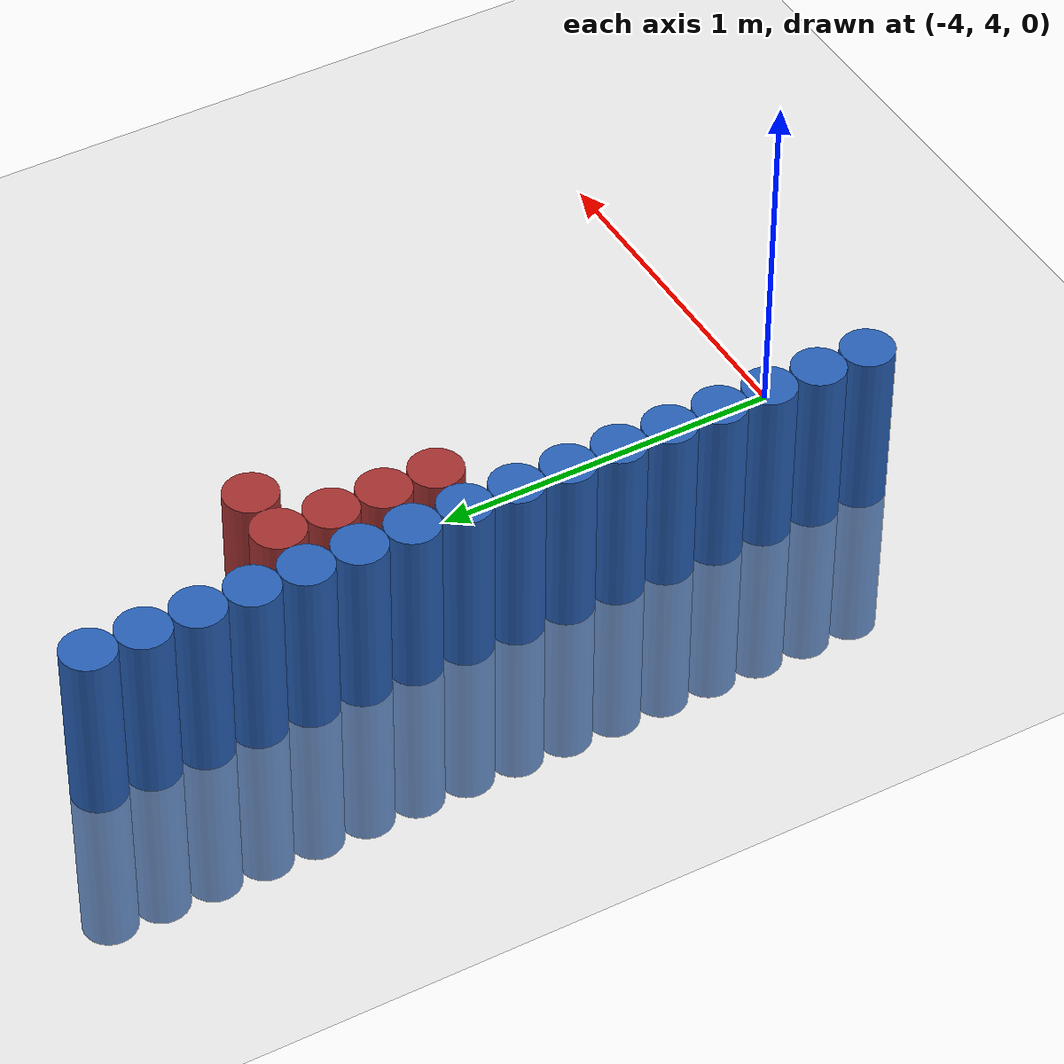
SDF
<sdf version="1.6">
 <world name="default">
  <model name="ground_plane">
   <static>1</static>
   <link name="link">
    <collision name="collision">
     <geometry><plane><normal>0 0 1</normal><size>100 100</size></plane></geometry>
     <surface><friction><ode><mu>100</mu><mu2>50</mu2></ode></friction></surface>
    </collision>
    <visual name="visual">
     <cast_shadows>0</cast_shadows>
     <geometry><plane><normal>0 0 1</normal><size>100 100</size></plane></geometry>
     <material>
      <script><uri>file://media/materials/scripts/gazebo.material</uri><name>Gazebo/Grey</name></script>
     </material>
    </visual>
   </link>
  </model>
  <model name="unit_cylinder_81">
   <static>1</static>
   <pose>-4.425000 3.975000 0.000000 0.000000 0.000000 0.000000</pose>
   <link name="link">
    <inertial>
     <mass>1</mass>
     <inertia><ixx>0.145833</ixx><ixy>0</ixy><ixz>0</ixz><iyy>0.145833</iyy><iyz>0</iyz><izz>0.125</izz></inertia>
    </inertial>
    <collision name="collision">
     <geometry><cylinder><radius>0.075000</radius><length>1</length></cylinder></geometry>
    </collision>
    <visual name="visual">
     <geometry><cylinder><radius>0.075000</radius><length>1</length></cylinder></geometry>
     <material>
      <ambient>0.152000 0.379000 0.720000 1</ambient>
      <diffuse>0.152000 0.379000 0.720000 1</diffuse>
     </material>
     <material>
      <script><name>Gazebo/Grey</name><uri>file://media/materials/scripts/gazebo.material</uri></script>
     </material>
    </visual>
    <sensor name="sensor_contact" type="contact"><contact><collision>collision</collision></contact></sensor>
   </link>
   <plugin filename="gz-sim-touchplugin-system" name="gz::sim::systems::TouchPlugin">
    <target>robot</target>
    <namespace>robot</namespace>
    <time>0.001</time>
    <enabled>true</enabled>
   </plugin>
  </model>
  <model name="unit_cylinder_83">
   <static>1</static>
   <pose>-4.425000 4.125000 0.000000 0.000000 0.000000 0.000000</pose>
   <link name="link">
    <inertial>
     <mass>1</mass>
     <inertia><ixx>0.145833</ixx><ixy>0</ixy><ixz>0</ixz><iyy>0.145833</iyy><iyz>0</iyz><izz>0.125</izz></inertia>
    </inertial>
    <collision name="collision">
     <geometry><cylinder><radius>0.075000</radius><length>1</length></cylinder></geometry>
    </collision>
    <visual name="visual">
     <geometry><cylinder><radius>0.075000</radius><length>1</length></cylinder></geometry>
     <material>
      <ambient>0.152000 0.379000 0.720000 1</ambient>
      <diffuse>0.152000 0.379000 0.720000 1</diffuse>
     </material>
     <material>
      <script><name>Gazebo/Grey</name><uri>file://media/materials/scripts/gazebo.material</uri></script>
     </material>
    </visual>
    <sensor name="sensor_contact" type="contact"><contact><collision>collision</collision></contact></sensor>
   </link>
   <plugin filename="gz-sim-touchplugin-system" name="gz::sim::systems::TouchPlugin">
    <target>robot</target>
    <namespace>robot</namespace>
    <time>0.001</time>
    <enabled>true</enabled>
   </plugin>
  </model>
  <model name="unit_cylinder_85">
   <static>1</static>
   <pose>-4.425000 4.275000 0.000000 0.000000 0.000000 0.000000</pose>
   <link name="link">
    <inertial>
     <mass>1</mass>
     <inertia><ixx>0.145833</ixx><ixy>0</ixy><ixz>0</ixz><iyy>0.145833</iyy><iyz>0</iyz><izz>0.125</izz></inertia>
    </inertial>
    <collision name="collision">
     <geometry><cylinder><radius>0.075000</radius><length>1</length></cylinder></geometry>
    </collision>
    <visual name="visual">
     <geometry><cylinder><radius>0.075000</radius><length>1</length></cylinder></geometry>
     <material>
      <ambient>0.152000 0.379000 0.720000 1</ambient>
      <diffuse>0.152000 0.379000 0.720000 1</diffuse>
     </material>
     <material>
      <script><name>Gazebo/Grey</name><uri>file://media/materials/scripts/gazebo.material</uri></script>
     </material>
    </visual>
    <sensor name="sensor_contact" type="contact"><contact><collision>collision</collision></contact></sensor>
   </link>
   <plugin filename="gz-sim-touchplugin-system" name="gz::sim::systems::TouchPlugin">
    <target>robot</target>
    <namespace>robot</namespace>
    <time>0.001</time>
    <enabled>true</enabled>
   </plugin>
  </model>
  <model name="unit_cylinder_87">
   <static>1</static>
   <pose>-4.425000 4.425000 0.000000 0.000000 0.000000 0.000000</pose>
   <link name="link">
    <inertial>
     <mass>1</mass>
     <inertia><ixx>0.145833</ixx><ixy>0</ixy><ixz>0</ixz><iyy>0.145833</iyy><iyz>0</iyz><izz>0.125</izz></inertia>
    </inertial>
    <collision name="collision">
     <geometry><cylinder><radius>0.075000</radius><length>1</length></cylinder></geometry>
    </collision>
    <visual name="visual">
     <geometry><cylinder><radius>0.075000</radius><length>1</length></cylinder></geometry>
     <material>
      <ambient>0.152000 0.379000 0.720000 1</ambient>
      <diffuse>0.152000 0.379000 0.720000 1</diffuse>
     </material>
     <material>
      <script><name>Gazebo/Grey</name><uri>file://media/materials/scripts/gazebo.material</uri></script>
     </material>
    </visual>
    <sensor name="sensor_contact" type="contact"><contact><collision>collision</collision></contact></sensor>
   </link>
   <plugin filename="gz-sim-touchplugin-system" name="gz::sim::systems::TouchPlugin">
    <target>robot</target>
    <namespace>robot</namespace>
    <time>0.001</time>
    <enabled>true</enabled>
   </plugin>
  </model>
  <model name="unit_cylinder_89">
   <static>1</static>
   <pose>-4.425000 4.575000 0.000000 0.000000 0.000000 0.000000</pose>
   <link name="link">
    <inertial>
     <mass>1</mass>
     <inertia><ixx>0.145833</ixx><ixy>0</ixy><ixz>0</ixz><iyy>0.145833</iyy><iyz>0</iyz><izz>0.125</izz></inertia>
    </inertial>
    <collision name="collision">
     <geometry><cylinder><radius>0.075000</radius><length>1</length></cylinder></geometry>
    </collision>
    <visual name="visual">
     <geometry><cylinder><radius>0.075000</radius><length>1</length></cylinder></geometry>
     <material>
      <ambient>0.152000 0.379000 0.720000 1</ambient>
      <diffuse>0.152000 0.379000 0.720000 1</diffuse>
     </material>
     <material>
      <script><name>Gazebo/Grey</name><uri>file://media/materials/scripts/gazebo.material</uri></script>
     </material>
    </visual>
    <sensor name="sensor_contact" type="contact"><contact><collision>collision</collision></contact></sensor>
   </link>
   <plugin filename="gz-sim-touchplugin-system" name="gz::sim::systems::TouchPlugin">
    <target>robot</target>
    <namespace>robot</namespace>
    <time>0.001</time>
    <enabled>true</enabled>
   </plugin>
  </model>
  <model name="unit_cylinder_91">
   <static>1</static>
   <pose>-4.425000 4.725000 0.000000 0.000000 0.000000 0.000000</pose>
   <link name="link">
    <inertial>
     <mass>1</mass>
     <inertia><ixx>0.145833</ixx><ixy>0</ixy><ixz>0</ixz><iyy>0.145833</iyy><iyz>0</iyz><izz>0.125</izz></inertia>
    </inertial>
    <collision name="collision">
     <geometry><cylinder><radius>0.075000</radius><length>1</length></cylinder></geometry>
    </collision>
    <visual name="visual">
     <geometry><cylinder><radius>0.075000</radius><length>1</length></cylinder></geometry>
     <material>
      <ambient>0.152000 0.379000 0.720000 1</ambient>
      <diffuse>0.152000 0.379000 0.720000 1</diffuse>
     </material>
     <material>
      <script><name>Gazebo/Grey</name><uri>file://media/materials/scripts/gazebo.material</uri></script>
     </material>
    </visual>
    <sensor name="sensor_contact" type="contact"><contact><collision>collision</collision></contact></sensor>
   </link>
   <plugin filename="gz-sim-touchplugin-system" name="gz::sim::systems::TouchPlugin">
    <target>robot</target>
    <namespace>robot</namespace>
    <time>0.001</time>
    <enabled>true</enabled>
   </plugin>
  </model>
  <model name="unit_cylinder_93">
   <static>1</static>
   <pose>-4.425000 4.875000 0.000000 0.000000 0.000000 0.000000</pose>
   <link name="link">
    <inertial>
     <mass>1</mass>
     <inertia><ixx>0.145833</ixx><ixy>0</ixy><ixz>0</ixz><iyy>0.145833</iyy><iyz>0</iyz><izz>0.125</izz></inertia>
    </inertial>
    <collision name="collision">
     <geometry><cylinder><radius>0.075000</radius><length>1</length></cylinder></geometry>
    </collision>
    <visual name="visual">
     <geometry><cylinder><radius>0.075000</radius><length>1</length></cylinder></geometry>
     <material>
      <ambient>0.152000 0.379000 0.720000 1</ambient>
      <diffuse>0.152000 0.379000 0.720000 1</diffuse>
     </material>
     <material>
      <script><name>Gazebo/Grey</name><uri>file://media/materials/scripts/gazebo.material</uri></script>
     </material>
    </visual>
    <sensor name="sensor_contact" type="contact"><contact><collision>collision</collision></contact></sensor>
   </link>
   <plugin filename="gz-sim-touchplugin-system" name="gz::sim::systems::TouchPlugin">
    <target>robot</target>
    <namespace>robot</namespace>
    <time>0.001</time>
    <enabled>true</enabled>
   </plugin>
  </model>
  <model name="unit_cylinder_95">
   <static>1</static>
   <pose>-4.425000 5.025000 0.000000 0.000000 0.000000 0.000000</pose>
   <link name="link">
    <inertial>
     <mass>1</mass>
     <inertia><ixx>0.145833</ixx><ixy>0</ixy><ixz>0</ixz><iyy>0.145833</iyy><iyz>0</iyz><izz>0.125</izz></inertia>
    </inertial>
    <collision name="collision">
     <geometry><cylinder><radius>0.075000</radius><length>1</length></cylinder></geometry>
    </collision>
    <visual name="visual">
     <geometry><cylinder><radius>0.075000</radius><length>1</length></cylinder></geometry>
     <material>
      <ambient>0.152000 0.379000 0.720000 1</ambient>
      <diffuse>0.152000 0.379000 0.720000 1</diffuse>
     </material>
     <material>
      <script><name>Gazebo/Grey</name><uri>file://media/materials/scripts/gazebo.material</uri></script>
     </material>
    </visual>
    <sensor name="sensor_contact" type="contact"><contact><collision>collision</collision></contact></sensor>
   </link>
   <plugin filename="gz-sim-touchplugin-system" name="gz::sim::systems::TouchPlugin">
    <target>robot</target>
    <namespace>robot</namespace>
    <time>0.001</time>
    <enabled>true</enabled>
   </plugin>
  </model>
  <model name="unit_cylinder_96">
   <static>1</static>
   <pose>-4.425000 5.175000 0.000000 0.000000 0.000000 0.000000</pose>
   <link name="link">
    <inertial>
     <mass>1</mass>
     <inertia><ixx>0.145833</ixx><ixy>0</ixy><ixz>0</ixz><iyy>0.145833</iyy><iyz>0</iyz><izz>0.125</izz></inertia>
    </inertial>
    <collision name="collision">
     <geometry><cylinder><radius>0.075000</radius><length>1</length></cylinder></geometry>
    </collision>
    <visual name="visual">
     <geometry><cylinder><radius>0.075000</radius><length>1</length></cylinder></geometry>
     <material>
      <ambient>0.152000 0.379000 0.720000 1</ambient>
      <diffuse>0.152000 0.379000 0.720000 1</diffuse>
     </material>
     <material>
      <script><name>Gazebo/Grey</name><uri>file://media/materials/scripts/gazebo.material</uri></script>
     </material>
    </visual>
    <sensor name="sensor_contact" type="contact"><contact><collision>collision</collision></contact></sensor>
   </link>
   <plugin filename="gz-sim-touchplugin-system" name="gz::sim::systems::TouchPlugin">
    <target>robot</target>
    <namespace>robot</namespace>
    <time>0.001</time>
    <enabled>true</enabled>
   </plugin>
  </model>
  <model name="unit_cylinder_97">
   <static>1</static>
   <pose>-4.425000 5.325000 0.000000 0.000000 0.000000 0.000000</pose>
   <link name="link">
    <inertial>
     <mass>1</mass>
     <inertia><ixx>0.145833</ixx><ixy>0</ixy><ixz>0</ixz><iyy>0.145833</iyy><iyz>0</iyz><izz>0.125</izz></inertia>
    </inertial>
    <collision name="collision">
     <geometry><cylinder><radius>0.075000</radius><length>1</length></cylinder></geometry>
    </collision>
    <visual name="visual">
     <geometry><cylinder><radius>0.075000</radius><length>1</length></cylinder></geometry>
     <material>
      <ambient>0.152000 0.379000 0.720000 1</ambient>
      <diffuse>0.152000 0.379000 0.720000 1</diffuse>
     </material>
     <material>
      <script><name>Gazebo/Grey</name><uri>file://media/materials/scripts/gazebo.material</uri></script>
     </material>
    </visual>
    <sensor name="sensor_contact" type="contact"><contact><collision>collision</collision></contact></sensor>
   </link>
   <plugin filename="gz-sim-touchplugin-system" name="gz::sim::systems::TouchPlugin">
    <target>robot</target>
    <namespace>robot</namespace>
    <time>0.001</time>
    <enabled>true</enabled>
   </plugin>
  </model>
  <model name="unit_cylinder_98">
   <static>1</static>
   <pose>-4.425000 5.475000 0.000000 0.000000 0.000000 0.000000</pose>
   <link name="link">
    <inertial>
     <mass>1</mass>
     <inertia><ixx>0.145833</ixx><ixy>0</ixy><ixz>0</ixz><iyy>0.145833</iyy><iyz>0</iyz><izz>0.125</izz></inertia>
    </inertial>
    <collision name="collision">
     <geometry><cylinder><radius>0.075000</radius><length>1</length></cylinder></geometry>
    </collision>
    <visual name="visual">
     <geometry><cylinder><radius>0.075000</radius><length>1</length></cylinder></geometry>
     <material>
      <ambient>0.152000 0.379000 0.720000 1</ambient>
      <diffuse>0.152000 0.379000 0.720000 1</diffuse>
     </material>
     <material>
      <script><name>Gazebo/Grey</name><uri>file://media/materials/scripts/gazebo.material</uri></script>
     </material>
    </visual>
    <sensor name="sensor_contact" type="contact"><contact><collision>collision</collision></contact></sensor>
   </link>
   <plugin filename="gz-sim-touchplugin-system" name="gz::sim::systems::TouchPlugin">
    <target>robot</target>
    <namespace>robot</namespace>
    <time>0.001</time>
    <enabled>true</enabled>
   </plugin>
  </model>
  <model name="unit_cylinder_99">
   <static>1</static>
   <pose>-4.425000 5.625000 0.000000 0.000000 0.000000 0.000000</pose>
   <link name="link">
    <inertial>
     <mass>1</mass>
     <inertia><ixx>0.145833</ixx><ixy>0</ixy><ixz>0</ixz><iyy>0.145833</iyy><iyz>0</iyz><izz>0.125</izz></inertia>
    </inertial>
    <collision name="collision">
     <geometry><cylinder><radius>0.075000</radius><length>1</length></cylinder></geometry>
    </collision>
    <visual name="visual">
     <geometry><cylinder><radius>0.075000</radius><length>1</length></cylinder></geometry>
     <material>
      <ambient>0.152000 0.379000 0.720000 1</ambient>
      <diffuse>0.152000 0.379000 0.720000 1</diffuse>
     </material>
     <material>
      <script><name>Gazebo/Grey</name><uri>file://media/materials/scripts/gazebo.material</uri></script>
     </material>
    </visual>
    <sensor name="sensor_contact" type="contact"><contact><collision>collision</collision></contact></sensor>
   </link>
   <plugin filename="gz-sim-touchplugin-system" name="gz::sim::systems::TouchPlugin">
    <target>robot</target>
    <namespace>robot</namespace>
    <time>0.001</time>
    <enabled>true</enabled>
   </plugin>
  </model>
  <model name="unit_cylinder_100">
   <static>1</static>
   <pose>-4.425000 5.775000 0.000000 0.000000 0.000000 0.000000</pose>
   <link name="link">
    <inertial>
     <mass>1</mass>
     <inertia><ixx>0.145833</ixx><ixy>0</ixy><ixz>0</ixz><iyy>0.145833</iyy><iyz>0</iyz><izz>0.125</izz></inertia>
    </inertial>
    <collision name="collision">
     <geometry><cylinder><radius>0.075000</radius><length>1</length></cylinder></geometry>
    </collision>
    <visual name="visual">
     <geometry><cylinder><radius>0.075000</radius><length>1</length></cylinder></geometry>
     <material>
      <ambient>0.152000 0.379000 0.720000 1</ambient>
      <diffuse>0.152000 0.379000 0.720000 1</diffuse>
     </material>
     <material>
      <script><name>Gazebo/Grey</name><uri>file://media/materials/scripts/gazebo.material</uri></script>
     </material>
    </visual>
    <sensor name="sensor_contact" type="contact"><contact><collision>collision</collision></contact></sensor>
   </link>
   <plugin filename="gz-sim-touchplugin-system" name="gz::sim::systems::TouchPlugin">
    <target>robot</target>
    <namespace>robot</namespace>
    <time>0.001</time>
    <enabled>true</enabled>
   </plugin>
  </model>
  <model name="unit_cylinder_101">
   <static>1</static>
   <pose>-4.425000 5.925000 0.000000 0.000000 0.000000 0.000000</pose>
   <link name="link">
    <inertial>
     <mass>1</mass>
     <inertia><ixx>0.145833</ixx><ixy>0</ixy><ixz>0</ixz><iyy>0.145833</iyy><iyz>0</iyz><izz>0.125</izz></inertia>
    </inertial>
    <collision name="collision">
     <geometry><cylinder><radius>0.075000</radius><length>1</length></cylinder></geometry>
    </collision>
    <visual name="visual">
     <geometry><cylinder><radius>0.075000</radius><length>1</length></cylinder></geometry>
     <material>
      <ambient>0.152000 0.379000 0.720000 1</ambient>
      <diffuse>0.152000 0.379000 0.720000 1</diffuse>
     </material>
     <material>
      <script><name>Gazebo/Grey</name><uri>file://media/materials/scripts/gazebo.material</uri></script>
     </material>
    </visual>
    <sensor name="sensor_contact" type="contact"><contact><collision>collision</collision></contact></sensor>
   </link>
   <plugin filename="gz-sim-touchplugin-system" name="gz::sim::systems::TouchPlugin">
    <target>robot</target>
    <namespace>robot</namespace>
    <time>0.001</time>
    <enabled>true</enabled>
   </plugin>
  </model>
  <model name="unit_cylinder_102">
   <static>1</static>
   <pose>-4.425000 6.075000 0.000000 0.000000 0.000000 0.000000</pose>
   <link name="link">
    <inertial>
     <mass>1</mass>
     <inertia><ixx>0.145833</ixx><ixy>0</ixy><ixz>0</ixz><iyy>0.145833</iyy><iyz>0</iyz><izz>0.125</izz></inertia>
    </inertial>
    <collision name="collision">
     <geometry><cylinder><radius>0.075000</radius><length>1</length></cylinder></geometry>
    </collision>
    <visual name="visual">
     <geometry><cylinder><radius>0.075000</radius><length>1</length></cylinder></geometry>
     <material>
      <ambient>0.152000 0.379000 0.720000 1</ambient>
      <diffuse>0.152000 0.379000 0.720000 1</diffuse>
     </material>
     <material>
      <script><name>Gazebo/Grey</name><uri>file://media/materials/scripts/gazebo.material</uri></script>
     </material>
    </visual>
    <sensor name="sensor_contact" type="contact"><contact><collision>collision</collision></contact></sensor>
   </link>
   <plugin filename="gz-sim-touchplugin-system" name="gz::sim::systems::TouchPlugin">
    <target>robot</target>
    <namespace>robot</namespace>
    <time>0.001</time>
    <enabled>true</enabled>
   </plugin>
  </model>
  <model name="unit_cylinder_103">
   <static>1</static>
   <pose>-4.425000 6.225000 0.000000 0.000000 0.000000 0.000000</pose>
   <link name="link">
    <inertial>
     <mass>1</mass>
     <inertia><ixx>0.145833</ixx><ixy>0</ixy><ixz>0</ixz><iyy>0.145833</iyy><iyz>0</iyz><izz>0.125</izz></inertia>
    </inertial>
    <collision name="collision">
     <geometry><cylinder><radius>0.075000</radius><length>1</length></cylinder></geometry>
    </collision>
    <visual name="visual">
     <geometry><cylinder><radius>0.075000</radius><length>1</length></cylinder></geometry>
     <material>
      <ambient>0.152000 0.379000 0.720000 1</ambient>
      <diffuse>0.152000 0.379000 0.720000 1</diffuse>
     </material>
     <material>
      <script><name>Gazebo/Grey</name><uri>file://media/materials/scripts/gazebo.material</uri></script>
     </material>
    </visual>
    <sensor name="sensor_contact" type="contact"><contact><collision>collision</collision></contact></sensor>
   </link>
   <plugin filename="gz-sim-touchplugin-system" name="gz::sim::systems::TouchPlugin">
    <target>robot</target>
    <namespace>robot</namespace>
    <time>0.001</time>
    <enabled>true</enabled>
   </plugin>
  </model>
  <model name="unit_cylinder_126">
   <static>1</static>
   <pose>-4.275000 5.175000 0.000000 0.000000 0.000000 0.000000</pose>
   <link name="link">
    <inertial>
     <mass>1</mass>
     <inertia><ixx>0.145833</ixx><ixy>0</ixy><ixz>0</ixz><iyy>0.145833</iyy><iyz>0</iyz><izz>0.125</izz></inertia>
    </inertial>
    <collision name="collision">
     <geometry><cylinder><radius>0.075000</radius><length>1</length></cylinder></geometry>
    </collision>
    <visual name="visual">
     <geometry><cylinder><radius>0.075000</radius><length>1</length></cylinder></geometry>
     <material>
      <ambient>0.648000 0.192000 0.192000 1</ambient>
      <diffuse>0.648000 0.192000 0.192000 1</diffuse>
     </material>
     <material>
      <script><name>Gazebo/Grey</name><uri>file://media/materials/scripts/gazebo.material</uri></script>
     </material>
    </visual>
    <sensor name="sensor_contact" type="contact"><contact><collision>collision</collision></contact></sensor>
   </link>
   <plugin filename="gz-sim-touchplugin-system" name="gz::sim::systems::TouchPlugin">
    <target>robot</target>
    <namespace>robot</namespace>
    <time>0.001</time>
    <enabled>true</enabled>
   </plugin>
  </model>
  <model name="unit_cylinder_127">
   <static>1</static>
   <pose>-4.275000 5.325000 0.000000 0.000000 0.000000 0.000000</pose>
   <link name="link">
    <inertial>
     <mass>1</mass>
     <inertia><ixx>0.145833</ixx><ixy>0</ixy><ixz>0</ixz><iyy>0.145833</iyy><iyz>0</iyz><izz>0.125</izz></inertia>
    </inertial>
    <collision name="collision">
     <geometry><cylinder><radius>0.075000</radius><length>1</length></cylinder></geometry>
    </collision>
    <visual name="visual">
     <geometry><cylinder><radius>0.075000</radius><length>1</length></cylinder></geometry>
     <material>
      <ambient>0.648000 0.192000 0.192000 1</ambient>
      <diffuse>0.648000 0.192000 0.192000 1</diffuse>
     </material>
     <material>
      <script><name>Gazebo/Grey</name><uri>file://media/materials/scripts/gazebo.material</uri></script>
     </material>
    </visual>
    <sensor name="sensor_contact" type="contact"><contact><collision>collision</collision></contact></sensor>
   </link>
   <plugin filename="gz-sim-touchplugin-system" name="gz::sim::systems::TouchPlugin">
    <target>robot</target>
    <namespace>robot</namespace>
    <time>0.001</time>
    <enabled>true</enabled>
   </plugin>
  </model>
  <model name="unit_cylinder_128">
   <static>1</static>
   <pose>-4.275000 5.475000 0.000000 0.000000 0.000000 0.000000</pose>
   <link name="link">
    <inertial>
     <mass>1</mass>
     <inertia><ixx>0.145833</ixx><ixy>0</ixy><ixz>0</ixz><iyy>0.145833</iyy><iyz>0</iyz><izz>0.125</izz></inertia>
    </inertial>
    <collision name="collision">
     <geometry><cylinder><radius>0.075000</radius><length>1</length></cylinder></geometry>
    </collision>
    <visual name="visual">
     <geometry><cylinder><radius>0.075000</radius><length>1</length></cylinder></geometry>
     <material>
      <ambient>0.648000 0.192000 0.192000 1</ambient>
      <diffuse>0.648000 0.192000 0.192000 1</diffuse>
     </material>
     <material>
      <script><name>Gazebo/Grey</name><uri>file://media/materials/scripts/gazebo.material</uri></script>
     </material>
    </visual>
    <sensor name="sensor_contact" type="contact"><contact><collision>collision</collision></contact></sensor>
   </link>
   <plugin filename="gz-sim-touchplugin-system" name="gz::sim::systems::TouchPlugin">
    <target>robot</target>
    <namespace>robot</namespace>
    <time>0.001</time>
    <enabled>true</enabled>
   </plugin>
  </model>
  <model name="unit_cylinder_129">
   <static>1</static>
   <pose>-4.275000 5.625000 0.000000 0.000000 0.000000 0.000000</pose>
   <link name="link">
    <inertial>
     <mass>1</mass>
     <inertia><ixx>0.145833</ixx><ixy>0</ixy><ixz>0</ixz><iyy>0.145833</iyy><iyz>0</iyz><izz>0.125</izz></inertia>
    </inertial>
    <collision name="collision">
     <geometry><cylinder><radius>0.075000</radius><length>1</length></cylinder></geometry>
    </collision>
    <visual name="visual">
     <geometry><cylinder><radius>0.075000</radius><length>1</length></cylinder></geometry>
     <material>
      <ambient>0.648000 0.192000 0.192000 1</ambient>
      <diffuse>0.648000 0.192000 0.192000 1</diffuse>
     </material>
     <material>
      <script><name>Gazebo/Grey</name><uri>file://media/materials/scripts/gazebo.material</uri></script>
     </material>
    </visual>
    <sensor name="sensor_contact" type="contact"><contact><collision>collision</collision></contact></sensor>
   </link>
   <plugin filename="gz-sim-touchplugin-system" name="gz::sim::systems::TouchPlugin">
    <target>robot</target>
    <namespace>robot</namespace>
    <time>0.001</time>
    <enabled>true</enabled>
   </plugin>
  </model>
  <model name="unit_cylinder_144">
   <static>1</static>
   <pose>-4.125000 5.625000 0.000000 0.000000 0.000000 0.000000</pose>
   <link name="link">
    <inertial>
     <mass>1</mass>
     <inertia><ixx>0.145833</ixx><ixy>0</ixy><ixz>0</ixz><iyy>0.145833</iyy><iyz>0</iyz><izz>0.125</izz></inertia>
    </inertial>
    <collision name="collision">
     <geometry><cylinder><radius>0.075000</radius><length>1</length></cylinder></geometry>
    </collision>
    <visual name="visual">
     <geometry><cylinder><radius>0.075000</radius><length>1</length></cylinder></geometry>
     <material>
      <ambient>0.648000 0.192000 0.192000 1</ambient>
      <diffuse>0.648000 0.192000 0.192000 1</diffuse>
     </material>
     <material>
      <script><name>Gazebo/Grey</name><uri>file://media/materials/scripts/gazebo.material</uri></script>
     </material>
    </visual>
    <sensor name="sensor_contact" type="contact"><contact><collision>collision</collision></contact></sensor>
   </link>
   <plugin filename="gz-sim-touchplugin-system" name="gz::sim::systems::TouchPlugin">
    <target>robot</target>
    <namespace>robot</namespace>
    <time>0.001</time>
    <enabled>true</enabled>
   </plugin>
  </model>
 </world>
</sdf>
